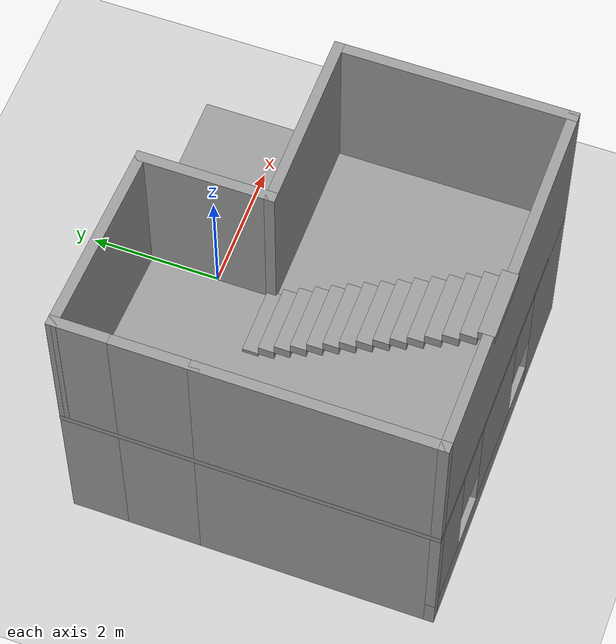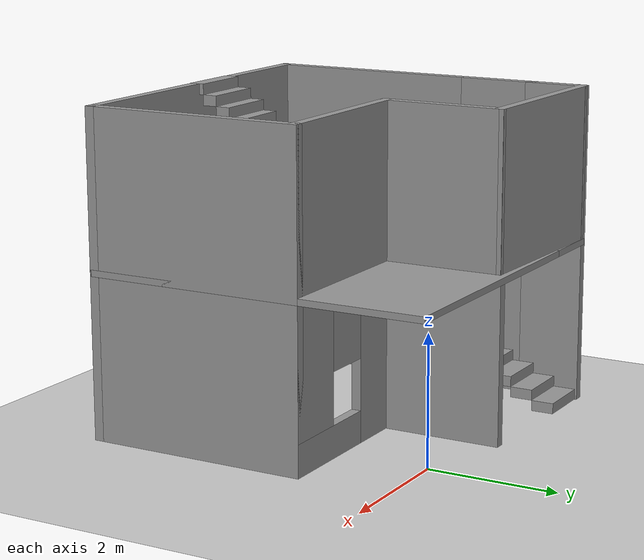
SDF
<sdf version="1.6">
 <world name="default">
  <light name="sun" type="directional">
   <pose>0 0 10 0 -0 0</pose>
   <diffuse>0.8 0.8 0.8 1</diffuse>
   <specular>0.1 0.1 0.1 1</specular>
   <attenuation>
    <range>1000</range>
    <constant>0.9</constant>
    <linear>0.01</linear>
    <quadratic>0.001</quadratic>
   </attenuation>
   <direction>-0.5 0.5 -1</direction>
  </light>
  <model name="ground_plane">
   <static>1</static>
   <link name="link">
    <collision name="collision">
     <geometry><plane><normal>0 0 1</normal><size>100 100</size></plane></geometry>
     <surface><friction><ode><mu>100</mu><mu2>50</mu2></ode></friction></surface>
    </collision>
    <visual name="visual">
     <cast_shadows>0</cast_shadows>
     <geometry><plane><normal>0 0 1</normal><size>100 100</size></plane></geometry>
     <material>
      <script><uri>file://media/materials/scripts/gazebo.material</uri><name>Gazebo/Grey</name></script>
     </material>
    </visual>
   </link>
  </model>
  <gravity>0 0 -9.8</gravity>
  <magnetic_field>6e-06 2.3e-05 -4.2e-05</magnetic_field>
  <atmosphere type="adiabatic"/>
  <physics name="default_physics" default="0" type="ode">
   <max_step_size>0.001</max_step_size>
   <real_time_factor>1</real_time_factor>
   <real_time_update_rate>1000</real_time_update_rate>
  </physics>
  <scene><ambient>0.4 0.4 0.4 1</ambient><background>0.7 0.7 0.7 1</background><shadows>1</shadows></scene>
  <spherical_coordinates>
   <surface_model>EARTH_WGS84</surface_model>
   <latitude_deg>0</latitude_deg>
   <longitude_deg>0</longitude_deg>
   <elevation>0</elevation>
   <heading_deg>0</heading_deg>
  </spherical_coordinates>
  <model name="house1">
   <pose>-1.50634 -2.16533 0 0 -0 0</pose>
   <link name="Floor_0">
    <pose>0 0.006673 2.5 0 -0 0</pose>
    <visual name="Floor_0_Visual_0">
     <pose>-2.73786 0 0.05 0 -0 0</pose>
     <geometry><box><size>0.026955 5.45268 0.1</size></box></geometry>
     <material>
      <script><uri>file://media/materials/scripts/gazebo.material</uri><name>Gazebo/Grey</name></script>
      <ambient>1 1 1 1</ambient>
     </material>
    </visual>
    <collision name="Floor_0_Collision_0">
     <geometry><box><size>0.026955 5.45268 0.1</size></box></geometry>
     <pose>-2.73786 0 0.05 0 -0 0</pose>
    </collision>
    <visual name="Floor_0_Visual_1">
     <pose>0.013478 -2.71688 0.05 0 -0 0</pose>
     <geometry><box><size>5.47572 0.018917 0.1</size></box></geometry>
     <material>
      <script><uri>file://media/materials/scripts/gazebo.material</uri><name>Gazebo/Grey</name></script>
      <ambient>1 1 1 1</ambient>
     </material>
    </visual>
    <collision name="Floor_0_Collision_1">
     <geometry><box><size>5.47572 0.018917 0.1</size></box></geometry>
     <pose>0.013478 -2.71688 0.05 0 -0 0</pose>
    </collision>
    <visual name="Floor_0_Visual_2">
     <pose>0.513478 0.009458 0.05 0 -0 0</pose>
     <geometry><box><size>4.47572 5.43376 0.1</size></box></geometry>
     <material>
      <script><uri>file://media/materials/scripts/gazebo.material</uri><name>Gazebo/Grey</name></script>
      <ambient>1 1 1 1</ambient>
     </material>
    </visual>
    <collision name="Floor_0_Collision_2">
     <geometry><box><size>4.47572 5.43376 0.1</size></box></geometry>
     <pose>0.513478 0.009458 0.05 0 -0 0</pose>
    </collision>
    <visual name="Floor_0_Visual_3">
     <pose>-2.22438 2.71001 0.05 0 -0 0</pose>
     <geometry><box><size>1 0.032666 0.1</size></box></geometry>
     <material>
      <script><uri>file://media/materials/scripts/gazebo.material</uri><name>Gazebo/Grey</name></script>
      <ambient>1 1 1 1</ambient>
     </material>
    </visual>
    <collision name="Floor_0_Collision_3">
     <geometry><box><size>1 0.032666 0.1</size></box></geometry>
     <pose>-2.22438 2.71001 0.05 0 -0 0</pose>
    </collision>
   </link>
   <link name="Stairs_0">
    <visual name="Stairs_0_Visual_0">
     <pose>-2.22438 2.52031 0.083333 0 -0 0</pose>
     <geometry><box><size>1 0.360073 0.166667</size></box></geometry>
     <material>
      <script><uri>file://media/materials/scripts/gazebo.material</uri><name>Gazebo/Grey</name></script>
      <ambient>1 1 1 1</ambient>
     </material>
    </visual>
    <collision name="Stairs_0_Collision_0">
     <geometry><box><size>1 0.360073 0.166667</size></box></geometry>
     <pose>-2.22438 2.52031 0.083333 0 -0 0</pose>
    </collision>
    <visual name="Stairs_0_Visual_1">
     <pose>-2.22438 2.16024 0.25 0 -0 0</pose>
     <geometry><box><size>1 0.360073 0.166667</size></box></geometry>
     <material>
      <script><uri>file://media/materials/scripts/gazebo.material</uri><name>Gazebo/Grey</name></script>
      <ambient>1 1 1 1</ambient>
     </material>
    </visual>
    <collision name="Stairs_0_Collision_1">
     <geometry><box><size>1 0.360073 0.166667</size></box></geometry>
     <pose>-2.22438 2.16024 0.25 0 -0 0</pose>
    </collision>
    <visual name="Stairs_0_Visual_2">
     <pose>-2.22438 1.80016 0.416667 0 -0 0</pose>
     <geometry><box><size>1 0.360073 0.166667</size></box></geometry>
     <material>
      <script><uri>file://media/materials/scripts/gazebo.material</uri><name>Gazebo/Grey</name></script>
      <ambient>1 1 1 1</ambient>
     </material>
    </visual>
    <collision name="Stairs_0_Collision_2">
     <geometry><box><size>1 0.360073 0.166667</size></box></geometry>
     <pose>-2.22438 1.80016 0.416667 0 -0 0</pose>
    </collision>
    <visual name="Stairs_0_Visual_3">
     <pose>-2.22438 1.44009 0.583333 0 -0 0</pose>
     <geometry><box><size>1 0.360073 0.166667</size></box></geometry>
     <material>
      <script><uri>file://media/materials/scripts/gazebo.material</uri><name>Gazebo/Grey</name></script>
      <ambient>1 1 1 1</ambient>
     </material>
    </visual>
    <collision name="Stairs_0_Collision_3">
     <geometry><box><size>1 0.360073 0.166667</size></box></geometry>
     <pose>-2.22438 1.44009 0.583333 0 -0 0</pose>
    </collision>
    <visual name="Stairs_0_Visual_4">
     <pose>-2.22438 1.08002 0.75 0 -0 0</pose>
     <geometry><box><size>1 0.360073 0.166667</size></box></geometry>
     <material>
      <script><uri>file://media/materials/scripts/gazebo.material</uri><name>Gazebo/Grey</name></script>
      <ambient>1 1 1 1</ambient>
     </material>
    </visual>
    <collision name="Stairs_0_Collision_4">
     <geometry><box><size>1 0.360073 0.166667</size></box></geometry>
     <pose>-2.22438 1.08002 0.75 0 -0 0</pose>
    </collision>
    <visual name="Stairs_0_Visual_5">
     <pose>-2.22438 0.719944 0.916667 0 -0 0</pose>
     <geometry><box><size>1 0.360073 0.166667</size></box></geometry>
     <material>
      <script><uri>file://media/materials/scripts/gazebo.material</uri><name>Gazebo/Grey</name></script>
      <ambient>1 1 1 1</ambient>
     </material>
    </visual>
    <collision name="Stairs_0_Collision_5">
     <geometry><box><size>1 0.360073 0.166667</size></box></geometry>
     <pose>-2.22438 0.719944 0.916667 0 -0 0</pose>
    </collision>
    <visual name="Stairs_0_Visual_6">
     <pose>-2.22438 0.359871 1.08333 0 -0 0</pose>
     <geometry><box><size>1 0.360073 0.166667</size></box></geometry>
     <material>
      <script><uri>file://media/materials/scripts/gazebo.material</uri><name>Gazebo/Grey</name></script>
      <ambient>1 1 1 1</ambient>
     </material>
    </visual>
    <collision name="Stairs_0_Collision_6">
     <geometry><box><size>1 0.360073 0.166667</size></box></geometry>
     <pose>-2.22438 0.359871 1.08333 0 -0 0</pose>
    </collision>
    <visual name="Stairs_0_Visual_7">
     <pose>-2.22438 -0.000202 1.25 0 -0 0</pose>
     <geometry><box><size>1 0.360073 0.166667</size></box></geometry>
     <material>
      <script><uri>file://media/materials/scripts/gazebo.material</uri><name>Gazebo/Grey</name></script>
      <ambient>1 1 1 1</ambient>
     </material>
    </visual>
    <collision name="Stairs_0_Collision_7">
     <geometry><box><size>1 0.360073 0.166667</size></box></geometry>
     <pose>-2.22438 -0.000202 1.25 0 -0 0</pose>
    </collision>
    <visual name="Stairs_0_Visual_8">
     <pose>-2.22438 -0.360274 1.41667 0 -0 0</pose>
     <geometry><box><size>1 0.360073 0.166667</size></box></geometry>
     <material>
      <script><uri>file://media/materials/scripts/gazebo.material</uri><name>Gazebo/Grey</name></script>
      <ambient>1 1 1 1</ambient>
     </material>
    </visual>
    <collision name="Stairs_0_Collision_8">
     <geometry><box><size>1 0.360073 0.166667</size></box></geometry>
     <pose>-2.22438 -0.360274 1.41667 0 -0 0</pose>
    </collision>
    <visual name="Stairs_0_Visual_9">
     <pose>-2.22438 -0.720348 1.58333 0 -0 0</pose>
     <geometry><box><size>1 0.360073 0.166667</size></box></geometry>
     <material>
      <script><uri>file://media/materials/scripts/gazebo.material</uri><name>Gazebo/Grey</name></script>
      <ambient>1 1 1 1</ambient>
     </material>
    </visual>
    <collision name="Stairs_0_Collision_9">
     <geometry><box><size>1 0.360073 0.166667</size></box></geometry>
     <pose>-2.22438 -0.720348 1.58333 0 -0 0</pose>
    </collision>
    <visual name="Stairs_0_Visual_10">
     <pose>-2.22438 -1.08042 1.75 0 -0 0</pose>
     <geometry><box><size>1 0.360073 0.166667</size></box></geometry>
     <material>
      <script><uri>file://media/materials/scripts/gazebo.material</uri><name>Gazebo/Grey</name></script>
      <ambient>1 1 1 1</ambient>
     </material>
    </visual>
    <collision name="Stairs_0_Collision_10">
     <geometry><box><size>1 0.360073 0.166667</size></box></geometry>
     <pose>-2.22438 -1.08042 1.75 0 -0 0</pose>
    </collision>
    <visual name="Stairs_0_Visual_11">
     <pose>-2.22438 -1.44049 1.91667 0 -0 0</pose>
     <geometry><box><size>1 0.360073 0.166667</size></box></geometry>
     <material>
      <script><uri>file://media/materials/scripts/gazebo.material</uri><name>Gazebo/Grey</name></script>
      <ambient>1 1 1 1</ambient>
     </material>
    </visual>
    <collision name="Stairs_0_Collision_11">
     <geometry><box><size>1 0.360073 0.166667</size></box></geometry>
     <pose>-2.22438 -1.44049 1.91667 0 -0 0</pose>
    </collision>
    <visual name="Stairs_0_Visual_12">
     <pose>-2.22438 -1.80057 2.08333 0 -0 0</pose>
     <geometry><box><size>1 0.360073 0.166667</size></box></geometry>
     <material>
      <script><uri>file://media/materials/scripts/gazebo.material</uri><name>Gazebo/Grey</name></script>
      <ambient>1 1 1 1</ambient>
     </material>
    </visual>
    <collision name="Stairs_0_Collision_12">
     <geometry><box><size>1 0.360073 0.166667</size></box></geometry>
     <pose>-2.22438 -1.80057 2.08333 0 -0 0</pose>
    </collision>
    <visual name="Stairs_0_Visual_13">
     <pose>-2.22438 -2.16064 2.25 0 -0 0</pose>
     <geometry><box><size>1 0.360073 0.166667</size></box></geometry>
     <material>
      <script><uri>file://media/materials/scripts/gazebo.material</uri><name>Gazebo/Grey</name></script>
      <ambient>1 1 1 1</ambient>
     </material>
    </visual>
    <collision name="Stairs_0_Collision_13">
     <geometry><box><size>1 0.360073 0.166667</size></box></geometry>
     <pose>-2.22438 -2.16064 2.25 0 -0 0</pose>
    </collision>
    <visual name="Stairs_0_Visual_14">
     <pose>-2.22438 -2.52071 2.41667 0 -0 0</pose>
     <geometry><box><size>1 0.360073 0.166667</size></box></geometry>
     <material>
      <script><uri>file://media/materials/scripts/gazebo.material</uri><name>Gazebo/Grey</name></script>
      <ambient>1 1 1 1</ambient>
     </material>
    </visual>
    <collision name="Stairs_0_Collision_14">
     <geometry><box><size>1 0.360073 0.166667</size></box></geometry>
     <pose>-2.22438 -2.52071 2.41667 0 -0 0</pose>
    </collision>
   </link>
   <link name="Stairs_1">
    <visual name="Stairs_1_Visual_0">
     <pose>-0.460857 0.650322 2.58333 0 -0 0</pose>
     <geometry><box><size>1 0.233333 0.166667</size></box></geometry>
     <material>
      <script><uri>file://media/materials/scripts/gazebo.material</uri><name>Gazebo/Grey</name></script>
      <ambient>1 1 1 1</ambient>
     </material>
    </visual>
    <collision name="Stairs_1_Collision_0">
     <geometry><box><size>1 0.233333 0.166667</size></box></geometry>
     <pose>-0.460857 0.650322 2.58333 0 -0 0</pose>
    </collision>
    <visual name="Stairs_1_Visual_1">
     <pose>-0.460857 0.416989 2.75 0 -0 0</pose>
     <geometry><box><size>1 0.233333 0.166667</size></box></geometry>
     <material>
      <script><uri>file://media/materials/scripts/gazebo.material</uri><name>Gazebo/Grey</name></script>
      <ambient>1 1 1 1</ambient>
     </material>
    </visual>
    <collision name="Stairs_1_Collision_1">
     <geometry><box><size>1 0.233333 0.166667</size></box></geometry>
     <pose>-0.460857 0.416989 2.75 0 -0 0</pose>
    </collision>
    <visual name="Stairs_1_Visual_2">
     <pose>-0.460857 0.183656 2.91667 0 -0 0</pose>
     <geometry><box><size>1 0.233333 0.166667</size></box></geometry>
     <material>
      <script><uri>file://media/materials/scripts/gazebo.material</uri><name>Gazebo/Grey</name></script>
      <ambient>1 1 1 1</ambient>
     </material>
    </visual>
    <collision name="Stairs_1_Collision_2">
     <geometry><box><size>1 0.233333 0.166667</size></box></geometry>
     <pose>-0.460857 0.183656 2.91667 0 -0 0</pose>
    </collision>
    <visual name="Stairs_1_Visual_3">
     <pose>-0.460857 -0.049678 3.08333 0 -0 0</pose>
     <geometry><box><size>1 0.233333 0.166667</size></box></geometry>
     <material>
      <script><uri>file://media/materials/scripts/gazebo.material</uri><name>Gazebo/Grey</name></script>
      <ambient>1 1 1 1</ambient>
     </material>
    </visual>
    <collision name="Stairs_1_Collision_3">
     <geometry><box><size>1 0.233333 0.166667</size></box></geometry>
     <pose>-0.460857 -0.049678 3.08333 0 -0 0</pose>
    </collision>
    <visual name="Stairs_1_Visual_4">
     <pose>-0.460857 -0.283011 3.25 0 -0 0</pose>
     <geometry><box><size>1 0.233333 0.166667</size></box></geometry>
     <material>
      <script><uri>file://media/materials/scripts/gazebo.material</uri><name>Gazebo/Grey</name></script>
      <ambient>1 1 1 1</ambient>
     </material>
    </visual>
    <collision name="Stairs_1_Collision_4">
     <geometry><box><size>1 0.233333 0.166667</size></box></geometry>
     <pose>-0.460857 -0.283011 3.25 0 -0 0</pose>
    </collision>
    <visual name="Stairs_1_Visual_5">
     <pose>-0.460857 -0.516344 3.41667 0 -0 0</pose>
     <geometry><box><size>1 0.233333 0.166667</size></box></geometry>
     <material>
      <script><uri>file://media/materials/scripts/gazebo.material</uri><name>Gazebo/Grey</name></script>
      <ambient>1 1 1 1</ambient>
     </material>
    </visual>
    <collision name="Stairs_1_Collision_5">
     <geometry><box><size>1 0.233333 0.166667</size></box></geometry>
     <pose>-0.460857 -0.516344 3.41667 0 -0 0</pose>
    </collision>
    <visual name="Stairs_1_Visual_6">
     <pose>-0.460857 -0.749678 3.58333 0 -0 0</pose>
     <geometry><box><size>1 0.233333 0.166667</size></box></geometry>
     <material>
      <script><uri>file://media/materials/scripts/gazebo.material</uri><name>Gazebo/Grey</name></script>
      <ambient>1 1 1 1</ambient>
     </material>
    </visual>
    <collision name="Stairs_1_Collision_6">
     <geometry><box><size>1 0.233333 0.166667</size></box></geometry>
     <pose>-0.460857 -0.749678 3.58333 0 -0 0</pose>
    </collision>
    <visual name="Stairs_1_Visual_7">
     <pose>-0.460857 -0.983011 3.75 0 -0 0</pose>
     <geometry><box><size>1 0.233333 0.166667</size></box></geometry>
     <material>
      <script><uri>file://media/materials/scripts/gazebo.material</uri><name>Gazebo/Grey</name></script>
      <ambient>1 1 1 1</ambient>
     </material>
    </visual>
    <collision name="Stairs_1_Collision_7">
     <geometry><box><size>1 0.233333 0.166667</size></box></geometry>
     <pose>-0.460857 -0.983011 3.75 0 -0 0</pose>
    </collision>
    <visual name="Stairs_1_Visual_8">
     <pose>-0.460857 -1.21634 3.91667 0 -0 0</pose>
     <geometry><box><size>1 0.233333 0.166667</size></box></geometry>
     <material>
      <script><uri>file://media/materials/scripts/gazebo.material</uri><name>Gazebo/Grey</name></script>
      <ambient>1 1 1 1</ambient>
     </material>
    </visual>
    <collision name="Stairs_1_Collision_8">
     <geometry><box><size>1 0.233333 0.166667</size></box></geometry>
     <pose>-0.460857 -1.21634 3.91667 0 -0 0</pose>
    </collision>
    <visual name="Stairs_1_Visual_9">
     <pose>-0.460857 -1.44968 4.08333 0 -0 0</pose>
     <geometry><box><size>1 0.233333 0.166667</size></box></geometry>
     <material>
      <script><uri>file://media/materials/scripts/gazebo.material</uri><name>Gazebo/Grey</name></script>
      <ambient>1 1 1 1</ambient>
     </material>
    </visual>
    <collision name="Stairs_1_Collision_9">
     <geometry><box><size>1 0.233333 0.166667</size></box></geometry>
     <pose>-0.460857 -1.44968 4.08333 0 -0 0</pose>
    </collision>
    <visual name="Stairs_1_Visual_10">
     <pose>-0.460857 -1.68301 4.25 0 -0 0</pose>
     <geometry><box><size>1 0.233333 0.166667</size></box></geometry>
     <material>
      <script><uri>file://media/materials/scripts/gazebo.material</uri><name>Gazebo/Grey</name></script>
      <ambient>1 1 1 1</ambient>
     </material>
    </visual>
    <collision name="Stairs_1_Collision_10">
     <geometry><box><size>1 0.233333 0.166667</size></box></geometry>
     <pose>-0.460857 -1.68301 4.25 0 -0 0</pose>
    </collision>
    <visual name="Stairs_1_Visual_11">
     <pose>-0.460857 -1.91634 4.41667 0 -0 0</pose>
     <geometry><box><size>1 0.233333 0.166667</size></box></geometry>
     <material>
      <script><uri>file://media/materials/scripts/gazebo.material</uri><name>Gazebo/Grey</name></script>
      <ambient>1 1 1 1</ambient>
     </material>
    </visual>
    <collision name="Stairs_1_Collision_11">
     <geometry><box><size>1 0.233333 0.166667</size></box></geometry>
     <pose>-0.460857 -1.91634 4.41667 0 -0 0</pose>
    </collision>
    <visual name="Stairs_1_Visual_12">
     <pose>-0.460857 -2.14968 4.58333 0 -0 0</pose>
     <geometry><box><size>1 0.233333 0.166667</size></box></geometry>
     <material>
      <script><uri>file://media/materials/scripts/gazebo.material</uri><name>Gazebo/Grey</name></script>
      <ambient>1 1 1 1</ambient>
     </material>
    </visual>
    <collision name="Stairs_1_Collision_12">
     <geometry><box><size>1 0.233333 0.166667</size></box></geometry>
     <pose>-0.460857 -2.14968 4.58333 0 -0 0</pose>
    </collision>
    <visual name="Stairs_1_Visual_13">
     <pose>-0.460857 -2.38301 4.75 0 -0 0</pose>
     <geometry><box><size>1 0.233333 0.166667</size></box></geometry>
     <material>
      <script><uri>file://media/materials/scripts/gazebo.material</uri><name>Gazebo/Grey</name></script>
      <ambient>1 1 1 1</ambient>
     </material>
    </visual>
    <collision name="Stairs_1_Collision_13">
     <geometry><box><size>1 0.233333 0.166667</size></box></geometry>
     <pose>-0.460857 -2.38301 4.75 0 -0 0</pose>
    </collision>
    <visual name="Stairs_1_Visual_14">
     <pose>-0.460857 -2.61634 4.91667 0 -0 0</pose>
     <geometry><box><size>1 0.233333 0.166667</size></box></geometry>
     <material>
      <script><uri>file://media/materials/scripts/gazebo.material</uri><name>Gazebo/Grey</name></script>
      <ambient>1 1 1 1</ambient>
     </material>
    </visual>
    <collision name="Stairs_1_Collision_14">
     <geometry><box><size>1 0.233333 0.166667</size></box></geometry>
     <pose>-0.460857 -2.61634 4.91667 0 -0 0</pose>
    </collision>
   </link>
   <link name="Wall_0">
    <pose>1.37634 0.705335 0 0 -0 0</pose>
    <visual name="Wall_0_Visual_0">
     <pose>-0.900764 0 1.25 0 -0 0</pose>
     <geometry><box><size>0.948472 0.15 2.5</size></box></geometry>
     <material>
      <script><uri>file://media/materials/scripts/gazebo.material</uri><name>Gazebo/Grey</name></script>
      <ambient>1 1 1 1</ambient>
     </material>
    </visual>
    <collision name="Wall_0_Collision_0">
     <geometry><box><size>0.948472 0.15 2.5</size></box></geometry>
     <pose>-0.900764 0 1.25 0 -0 0</pose>
    </collision>
    <visual name="Wall_0_Visual_1">
     <pose>0.474236 0 0.25 0 -0 0</pose>
     <geometry><box><size>1.80153 0.15 0.5</size></box></geometry>
     <material>
      <script><uri>file://media/materials/scripts/gazebo.material</uri><name>Gazebo/Grey</name></script>
      <ambient>1 1 1 1</ambient>
     </material>
    </visual>
    <collision name="Wall_0_Collision_1">
     <geometry><box><size>1.80153 0.15 0.5</size></box></geometry>
     <pose>0.474236 0 0.25 0 -0 0</pose>
    </collision>
    <visual name="Wall_0_Visual_2">
     <pose>0.874236 0 1.5 0 -0 0</pose>
     <geometry><box><size>1.00153 0.15 2</size></box></geometry>
     <material>
      <script><uri>file://media/materials/scripts/gazebo.material</uri><name>Gazebo/Grey</name></script>
      <ambient>1 1 1 1</ambient>
     </material>
    </visual>
    <collision name="Wall_0_Collision_2">
     <geometry><box><size>1.00153 0.15 2</size></box></geometry>
     <pose>0.874236 0 1.5 0 -0 0</pose>
    </collision>
    <visual name="Wall_0_Visual_3">
     <pose>-0.026528 0 1.9 0 -0 0</pose>
     <geometry><box><size>0.8 0.15 1.2</size></box></geometry>
     <material>
      <script><uri>file://media/materials/scripts/gazebo.material</uri><name>Gazebo/Grey</name></script>
      <ambient>1 1 1 1</ambient>
     </material>
    </visual>
    <collision name="Wall_0_Collision_3">
     <geometry><box><size>0.8 0.15 1.2</size></box></geometry>
     <pose>-0.026528 0 1.9 0 -0 0</pose>
    </collision>
   </link>
   <link name="Wall_1">
    <collision name="Wall_1_Collision">
     <geometry><box><size>3.5 0.15 2.5</size></box></geometry>
     <pose>0 0 1.25 0 -0 0</pose>
    </collision>
    <visual name="Wall_1_Visual">
     <pose>0 0 1.25 0 -0 0</pose>
     <geometry><box><size>3.5 0.15 2.5</size></box></geometry>
     <material>
      <script><uri>file://media/materials/scripts/gazebo.material</uri><name>Gazebo/Grey</name></script>
      <ambient>1 1 1 1</ambient>
     </material>
    </visual>
    <pose>2.67634 -0.969665 0 0 0 -1.5708</pose>
   </link>
   <link name="Wall_10">
    <collision name="Wall_10_Collision">
     <geometry><box><size>3.5 0.15 2.5</size></box></geometry>
     <pose>0 0 1.25 0 -0 0</pose>
    </collision>
    <visual name="Wall_10_Visual">
     <pose>0 0 1.25 0 -0 0</pose>
     <geometry><box><size>3.5 0.15 2.5</size></box></geometry>
     <material>
      <script><uri>file://media/materials/scripts/gazebo.material</uri><name>Gazebo/Grey</name></script>
      <ambient>1 1 1 1</ambient>
     </material>
    </visual>
    <pose>2.67634 -0.969665 2.5 0 0 -1.5708</pose>
   </link>
   <link name="Wall_11">
    <collision name="Wall_11_Collision">
     <geometry><box><size>5.5 0.15 2.5</size></box></geometry>
     <pose>0 0 1.25 0 -0 0</pose>
    </collision>
    <visual name="Wall_11_Visual">
     <pose>0 0 1.25 0 -0 0</pose>
     <geometry><box><size>5.5 0.15 2.5</size></box></geometry>
     <material>
      <script><uri>file://media/materials/scripts/gazebo.material</uri><name>Gazebo/Grey</name></script>
      <ambient>1 1 1 1</ambient>
     </material>
    </visual>
    <pose>0.001338 -2.64466 2.5 0 -0 3.14159</pose>
   </link>
   <link name="Wall_12">
    <collision name="Wall_12_Collision">
     <geometry><box><size>3.5 0.15 2.5</size></box></geometry>
     <pose>0 0 1.25 0 -0 0</pose>
    </collision>
    <visual name="Wall_12_Visual">
     <pose>0 0 1.25 0 -0 0</pose>
     <geometry><box><size>3.5 0.15 2.5</size></box></geometry>
     <material>
      <script><uri>file://media/materials/scripts/gazebo.material</uri><name>Gazebo/Grey</name></script>
      <ambient>1 1 1 1</ambient>
     </material>
    </visual>
    <pose>-2.67366 -0.969665 2.5 0 -0 1.5708</pose>
   </link>
   <link name="Wall_13">
    <collision name="Wall_13_Collision">
     <geometry><box><size>1.25 0.15 2.5</size></box></geometry>
     <pose>0 0 1.25 0 -0 0</pose>
    </collision>
    <visual name="Wall_13_Visual">
     <pose>0 0 1.25 0 -0 0</pose>
     <geometry><box><size>1.25 0.15 2.5</size></box></geometry>
     <material>
      <script><uri>file://media/materials/scripts/gazebo.material</uri><name>Gazebo/Grey</name></script>
      <ambient>1 1 1 1</ambient>
     </material>
    </visual>
    <pose>-2.67366 1.25534 2.5 0 -0 1.5708</pose>
   </link>
   <link name="Wall_14">
    <collision name="Wall_14_Collision">
     <geometry><box><size>1 0.15 2.5</size></box></geometry>
     <pose>0 0 1.25 0 -0 0</pose>
    </collision>
    <visual name="Wall_14_Visual">
     <pose>0 0 1.25 0 -0 0</pose>
     <geometry><box><size>1 0.15 2.5</size></box></geometry>
     <material>
      <script><uri>file://media/materials/scripts/gazebo.material</uri><name>Gazebo/Grey</name></script>
      <ambient>1 1 1 1</ambient>
     </material>
    </visual>
    <pose>-2.67366 2.23034 2.5 0 -0 1.5708</pose>
   </link>
   <link name="Wall_15">
    <collision name="Wall_15_Collision">
     <geometry><box><size>2 0.15 2.5</size></box></geometry>
     <pose>0 0 1.25 0 -0 0</pose>
    </collision>
    <visual name="Wall_15_Visual">
     <pose>0 0 1.25 0 -0 0</pose>
     <geometry><box><size>2 0.15 2.5</size></box></geometry>
     <material>
      <script><uri>file://media/materials/scripts/gazebo.material</uri><name>Gazebo/Grey</name></script>
      <ambient>1 1 1 1</ambient>
     </material>
    </visual>
    <pose>0.076338 1.63034 2.5 0 -0 1.5708</pose>
   </link>
   <link name="Wall_16">
    <collision name="Wall_16_Collision">
     <geometry><box><size>2.90182 0.15 2.5</size></box></geometry>
     <pose>0 0 1.25 0 -0 0</pose>
    </collision>
    <visual name="Wall_16_Visual">
     <pose>0 0 1.25 0 -0 0</pose>
     <geometry><box><size>2.90182 0.15 2.5</size></box></geometry>
     <material>
      <script><uri>file://media/materials/scripts/gazebo.material</uri><name>Gazebo/Grey</name></script>
      <ambient>1 1 1 1</ambient>
     </material>
    </visual>
    <pose>-1.29866 2.60534 2.5 0 -0 3.10525</pose>
   </link>
   <link name="Wall_2">
    <pose>0.001338 -2.64466 0 0 -0 3.14159</pose>
    <visual name="Wall_2_Visual_0">
     <pose>-2.04722 0 1.25 0 -0 0</pose>
     <geometry><box><size>1.40557 0.15 2.5</size></box></geometry>
     <material>
      <script><uri>file://media/materials/scripts/gazebo.material</uri><name>Gazebo/Grey</name></script>
      <ambient>1 1 1 1</ambient>
     </material>
    </visual>
    <collision name="Wall_2_Collision_0">
     <geometry><box><size>1.40557 0.15 2.5</size></box></geometry>
     <pose>-2.04722 0 1.25 0 -0 0</pose>
    </collision>
    <visual name="Wall_2_Visual_1">
     <pose>0.702783 0 0.25 0 -0 0</pose>
     <geometry><box><size>4.09443 0.15 0.5</size></box></geometry>
     <material>
      <script><uri>file://media/materials/scripts/gazebo.material</uri><name>Gazebo/Grey</name></script>
      <ambient>1 1 1 1</ambient>
     </material>
    </visual>
    <collision name="Wall_2_Collision_1">
     <geometry><box><size>4.09443 0.15 0.5</size></box></geometry>
     <pose>0.702783 0 0.25 0 -0 0</pose>
    </collision>
    <visual name="Wall_2_Visual_2">
     <pose>0.196223 0 1.5 0 -0 0</pose>
     <geometry><box><size>1.48131 0.15 2</size></box></geometry>
     <material>
      <script><uri>file://media/materials/scripts/gazebo.material</uri><name>Gazebo/Grey</name></script>
      <ambient>1 1 1 1</ambient>
     </material>
    </visual>
    <collision name="Wall_2_Collision_2">
     <geometry><box><size>1.48131 0.15 2</size></box></geometry>
     <pose>0.196223 0 1.5 0 -0 0</pose>
    </collision>
    <visual name="Wall_2_Visual_3">
     <pose>2.24344 0 1.5 0 -0 0</pose>
     <geometry><box><size>1.01312 0.15 2</size></box></geometry>
     <material>
      <script><uri>file://media/materials/scripts/gazebo.material</uri><name>Gazebo/Grey</name></script>
      <ambient>1 1 1 1</ambient>
     </material>
    </visual>
    <collision name="Wall_2_Collision_3">
     <geometry><box><size>1.01312 0.15 2</size></box></geometry>
     <pose>2.24344 0 1.5 0 -0 0</pose>
    </collision>
    <visual name="Wall_2_Visual_4">
     <pose>-0.944434 0 1.9 0 -0 0</pose>
     <geometry><box><size>0.8 0.15 1.2</size></box></geometry>
     <material>
      <script><uri>file://media/materials/scripts/gazebo.material</uri><name>Gazebo/Grey</name></script>
      <ambient>1 1 1 1</ambient>
     </material>
    </visual>
    <collision name="Wall_2_Collision_4">
     <geometry><box><size>0.8 0.15 1.2</size></box></geometry>
     <pose>-0.944434 0 1.9 0 -0 0</pose>
    </collision>
    <visual name="Wall_2_Visual_5">
     <pose>1.33688 0 1.9 0 -0 0</pose>
     <geometry><box><size>0.8 0.15 1.2</size></box></geometry>
     <material>
      <script><uri>file://media/materials/scripts/gazebo.material</uri><name>Gazebo/Grey</name></script>
      <ambient>1 1 1 1</ambient>
     </material>
    </visual>
    <collision name="Wall_2_Collision_5">
     <geometry><box><size>0.8 0.15 1.2</size></box></geometry>
     <pose>1.33688 0 1.9 0 -0 0</pose>
    </collision>
   </link>
   <link name="Wall_3">
    <collision name="Wall_3_Collision">
     <geometry><box><size>3.5 0.15 2.5</size></box></geometry>
     <pose>0 0 1.25 0 -0 0</pose>
    </collision>
    <visual name="Wall_3_Visual">
     <pose>0 0 1.25 0 -0 0</pose>
     <geometry><box><size>3.5 0.15 2.5</size></box></geometry>
     <material>
      <script><uri>file://media/materials/scripts/gazebo.material</uri><name>Gazebo/Grey</name></script>
      <ambient>1 1 1 1</ambient>
     </material>
    </visual>
    <pose>-2.67366 -0.969665 0 0 -0 1.5708</pose>
   </link>
   <link name="Wall_4">
    <collision name="Wall_4_Collision">
     <geometry><box><size>1.25 0.15 2.5</size></box></geometry>
     <pose>0 0 1.25 0 -0 0</pose>
    </collision>
    <visual name="Wall_4_Visual">
     <pose>0 0 1.25 0 -0 0</pose>
     <geometry><box><size>1.25 0.15 2.5</size></box></geometry>
     <material>
      <script><uri>file://media/materials/scripts/gazebo.material</uri><name>Gazebo/Grey</name></script>
      <ambient>1 1 1 1</ambient>
     </material>
    </visual>
    <pose>-2.67366 1.25534 0 0 -0 1.5708</pose>
   </link>
   <link name="Wall_5">
    <collision name="Wall_5_Collision">
     <geometry><box><size>1 0.15 2.5</size></box></geometry>
     <pose>0 0 1.25 0 -0 0</pose>
    </collision>
    <visual name="Wall_5_Visual">
     <pose>0 0 1.25 0 -0 0</pose>
     <geometry><box><size>1 0.15 2.5</size></box></geometry>
     <material>
      <script><uri>file://media/materials/scripts/gazebo.material</uri><name>Gazebo/Grey</name></script>
      <ambient>1 1 1 1</ambient>
     </material>
    </visual>
    <pose>-2.67366 2.23034 0 0 -0 1.5708</pose>
   </link>
   <link name="Wall_7">
    <collision name="Wall_7_Collision">
     <geometry><box><size>2 0.15 2.5</size></box></geometry>
     <pose>0 0 1.25 0 -0 0</pose>
    </collision>
    <visual name="Wall_7_Visual">
     <pose>0 0 1.25 0 -0 0</pose>
     <geometry><box><size>2 0.15 2.5</size></box></geometry>
     <material>
      <script><uri>file://media/materials/scripts/gazebo.material</uri><name>Gazebo/Grey</name></script>
      <ambient>1 1 1 1</ambient>
     </material>
    </visual>
    <pose>0.076338 1.63034 0 0 -0 1.5708</pose>
   </link>
   <link name="Wall_9">
    <collision name="Wall_9_Collision">
     <geometry><box><size>2.75 0.15 2.5</size></box></geometry>
     <pose>0 0 1.25 0 -0 0</pose>
    </collision>
    <visual name="Wall_9_Visual">
     <pose>0 0 1.25 0 -0 0</pose>
     <geometry><box><size>2.75 0.15 2.5</size></box></geometry>
     <material>
      <script><uri>file://media/materials/scripts/gazebo.material</uri><name>Gazebo/Grey</name></script>
      <ambient>1 1 1 1</ambient>
     </material>
    </visual>
    <pose>1.37634 0.705335 2.5 0 -0 0</pose>
   </link>
   <static>1</static>
  </model>
 </world>
</sdf>
